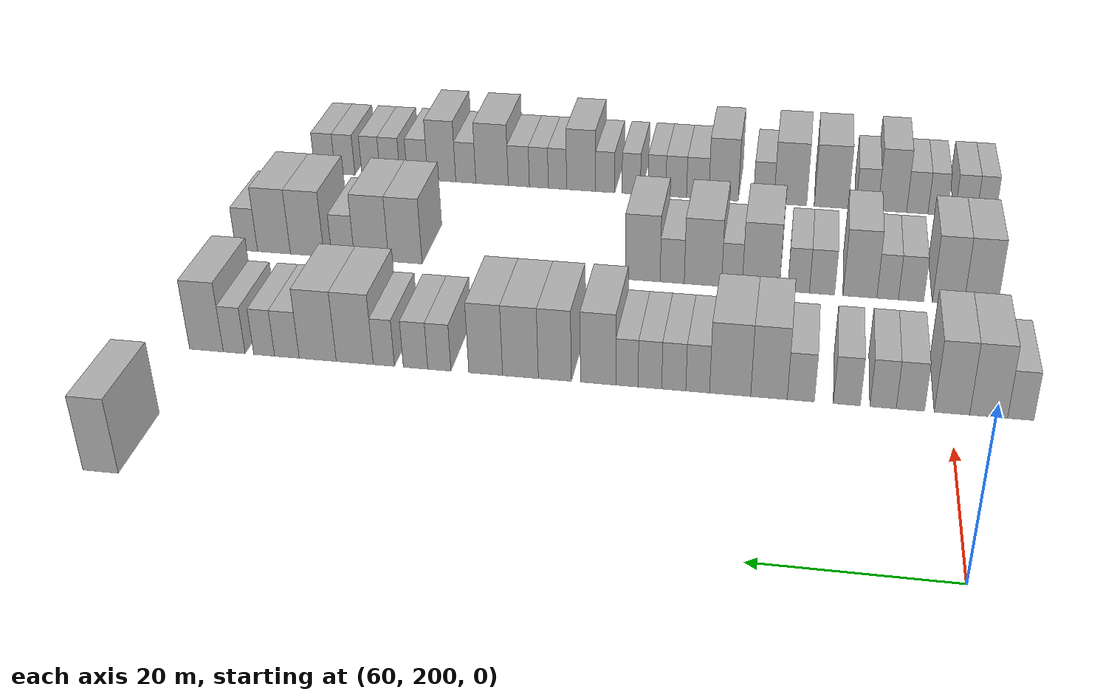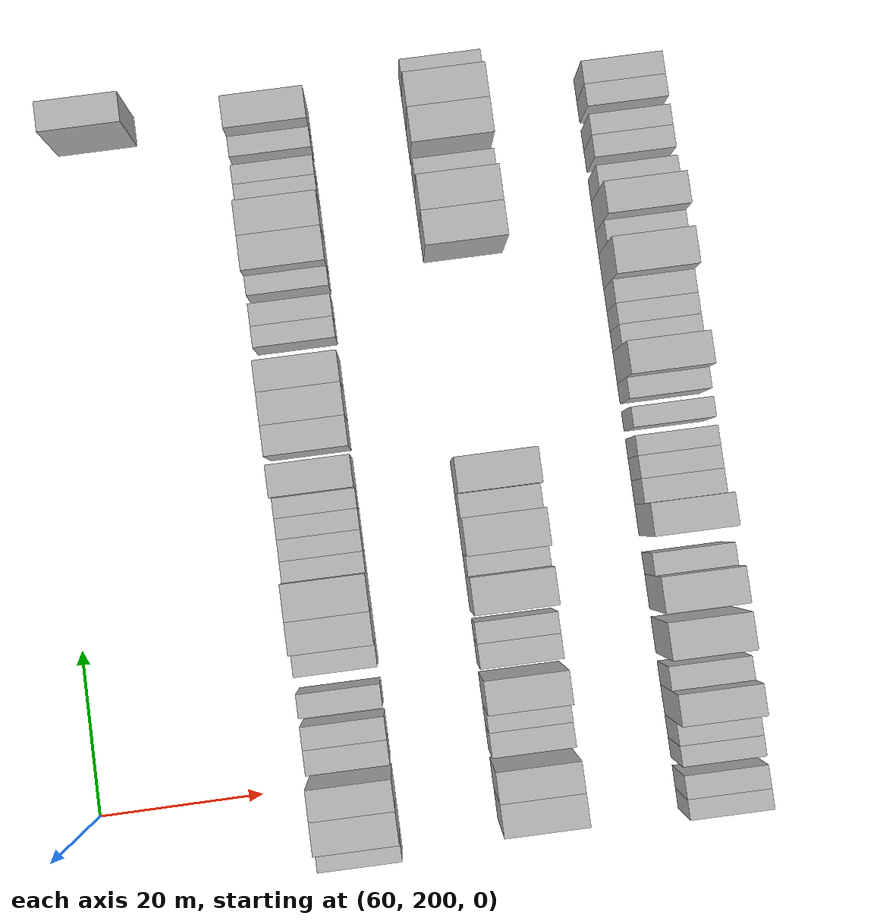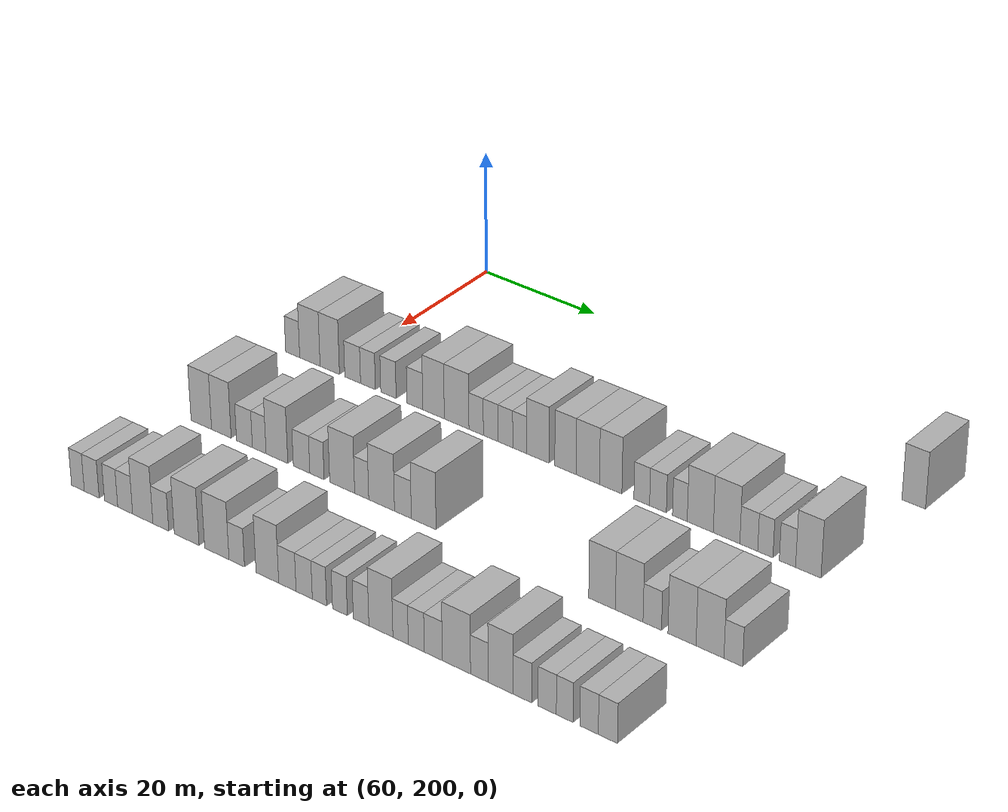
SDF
<sdf version="1.6">
 <world name="default">
  <model name="building_556">
   <static>1</static>
   <pose>69.0000 283.9982 0 0.000000 0.000000 0.000000</pose>
   <link name="link">
    <pose>0 0 4.50 0 0 0</pose>
    <collision name="collision"><geometry><box><size>10.0000 3.7069 9.0000</size></box></geometry></collision>
    <visual name="visual">
     <cast_shadows>0</cast_shadows>
     <geometry><box><size>10.0000 3.7069 9.0000</size></box></geometry>
     <material>
      <script>
       <uri>model://HANNAS_wall/materials/scripts</uri>
       <uri>model://HANNAS_wall/materials/textures</uri>
       <name>vrc/HANNAS_wall</name>
      </script>
     </material>
    </visual>
   </link>
  </model>
  <model name="building_719">
   <static>1</static>
   <pose>91.0000 192.8121 0 0.000000 0.000000 0.000000</pose>
   <link name="link">
    <pose>0 0 3.00 0 0 0</pose>
    <collision name="collision"><geometry><box><size>10.0000 2.6800 6.0000</size></box></geometry></collision>
    <visual name="visual">
     <cast_shadows>0</cast_shadows>
     <geometry><box><size>10.0000 2.6800 6.0000</size></box></geometry>
     <material>
      <script>
       <uri>model://HANNAS_wall/materials/scripts</uri>
       <uri>model://HANNAS_wall/materials/textures</uri>
       <name>vrc/HANNAS_wall</name>
      </script>
     </material>
    </visual>
   </link>
  </model>
  <model name="building_720">
   <static>1</static>
   <pose>91.0000 196.0876 0 0.000000 0.000000 0.000000</pose>
   <link name="link">
    <pose>0 0 4.50 0 0 0</pose>
    <collision name="collision"><geometry><box><size>10.0000 3.8709 9.0000</size></box></geometry></collision>
    <visual name="visual">
     <cast_shadows>0</cast_shadows>
     <geometry><box><size>10.0000 3.8709 9.0000</size></box></geometry>
     <material>
      <script>
       <uri>model://HANNAS_wall/materials/scripts</uri>
       <uri>model://HANNAS_wall/materials/textures</uri>
       <name>vrc/HANNAS_wall</name>
      </script>
     </material>
    </visual>
   </link>
  </model>
  <model name="building_721">
   <static>1</static>
   <pose>91.0000 199.8520 0 0.000000 0.000000 0.000000</pose>
   <link name="link">
    <pose>0 0 4.50 0 0 0</pose>
    <collision name="collision"><geometry><box><size>10.0000 3.6580 9.0000</size></box></geometry></collision>
    <visual name="visual">
     <cast_shadows>0</cast_shadows>
     <geometry><box><size>10.0000 3.6580 9.0000</size></box></geometry>
     <material>
      <script>
       <uri>model://HANNAS_wall/materials/scripts</uri>
       <uri>model://HANNAS_wall/materials/textures</uri>
       <name>vrc/HANNAS_wall</name>
      </script>
     </material>
    </visual>
   </link>
  </model>
  <model name="building_722">
   <static>1</static>
   <pose>91.0000 204.1499 0 0.000000 0.000000 0.000000</pose>
   <link name="link">
    <pose>0 0 3.00 0 0 0</pose>
    <collision name="collision"><geometry><box><size>10.0000 2.9379 6.0000</size></box></geometry></collision>
    <visual name="visual">
     <cast_shadows>0</cast_shadows>
     <geometry><box><size>10.0000 2.9379 6.0000</size></box></geometry>
     <material>
      <script>
       <uri>model://HANNAS_wall/materials/scripts</uri>
       <uri>model://HANNAS_wall/materials/textures</uri>
       <name>vrc/HANNAS_wall</name>
      </script>
     </material>
    </visual>
   </link>
  </model>
  <model name="building_723">
   <static>1</static>
   <pose>91.0000 206.9923 0 0.000000 0.000000 0.000000</pose>
   <link name="link">
    <pose>0 0 3.00 0 0 0</pose>
    <collision name="collision"><geometry><box><size>10.0000 2.7469 6.0000</size></box></geometry></collision>
    <visual name="visual">
     <cast_shadows>0</cast_shadows>
     <geometry><box><size>10.0000 2.7469 6.0000</size></box></geometry>
     <material>
      <script>
       <uri>model://HANNAS_wall/materials/scripts</uri>
       <uri>model://HANNAS_wall/materials/textures</uri>
       <name>vrc/HANNAS_wall</name>
      </script>
     </material>
    </visual>
   </link>
  </model>
  <model name="building_724">
   <static>1</static>
   <pose>91.0000 210.7777 0 0.000000 0.000000 0.000000</pose>
   <link name="link">
    <pose>0 0 3.00 0 0 0</pose>
    <collision name="collision"><geometry><box><size>10.0000 2.8239 6.0000</size></box></geometry></collision>
    <visual name="visual">
     <cast_shadows>0</cast_shadows>
     <geometry><box><size>10.0000 2.8239 6.0000</size></box></geometry>
     <material>
      <script>
       <uri>model://HANNAS_wall/materials/scripts</uri>
       <uri>model://HANNAS_wall/materials/textures</uri>
       <name>vrc/HANNAS_wall</name>
      </script>
     </material>
    </visual>
   </link>
  </model>
  <model name="building_725">
   <static>1</static>
   <pose>91.0000 215.6226 0 0.000000 0.000000 0.000000</pose>
   <link name="link">
    <pose>0 0 3.00 0 0 0</pose>
    <collision name="collision"><geometry><box><size>10.0000 2.8658 6.0000</size></box></geometry></collision>
    <visual name="visual">
     <cast_shadows>0</cast_shadows>
     <geometry><box><size>10.0000 2.8658 6.0000</size></box></geometry>
     <material>
      <script>
       <uri>model://HANNAS_wall/materials/scripts</uri>
       <uri>model://HANNAS_wall/materials/textures</uri>
       <name>vrc/HANNAS_wall</name>
      </script>
     </material>
    </visual>
   </link>
  </model>
  <model name="building_726">
   <static>1</static>
   <pose>91.0000 218.9947 0 0.000000 0.000000 0.000000</pose>
   <link name="link">
    <pose>0 0 4.50 0 0 0</pose>
    <collision name="collision"><geometry><box><size>10.0000 3.8783 9.0000</size></box></geometry></collision>
    <visual name="visual">
     <cast_shadows>0</cast_shadows>
     <geometry><box><size>10.0000 3.8783 9.0000</size></box></geometry>
     <material>
      <script>
       <uri>model://HANNAS_wall/materials/scripts</uri>
       <uri>model://HANNAS_wall/materials/textures</uri>
       <name>vrc/HANNAS_wall</name>
      </script>
     </material>
    </visual>
   </link>
  </model>
  <model name="building_727">
   <static>1</static>
   <pose>91.0000 223.1341 0 0.000000 0.000000 0.000000</pose>
   <link name="link">
    <pose>0 0 4.50 0 0 0</pose>
    <collision name="collision"><geometry><box><size>10.0000 4.4006 9.0000</size></box></geometry></collision>
    <visual name="visual">
     <cast_shadows>0</cast_shadows>
     <geometry><box><size>10.0000 4.4006 9.0000</size></box></geometry>
     <material>
      <script>
       <uri>model://HANNAS_wall/materials/scripts</uri>
       <uri>model://HANNAS_wall/materials/textures</uri>
       <name>vrc/HANNAS_wall</name>
      </script>
     </material>
    </visual>
   </link>
  </model>
  <model name="building_728">
   <static>1</static>
   <pose>91.0000 226.6099 0 0.000000 0.000000 0.000000</pose>
   <link name="link">
    <pose>0 0 3.00 0 0 0</pose>
    <collision name="collision"><geometry><box><size>10.0000 2.5509 6.0000</size></box></geometry></collision>
    <visual name="visual">
     <cast_shadows>0</cast_shadows>
     <geometry><box><size>10.0000 2.5509 6.0000</size></box></geometry>
     <material>
      <script>
       <uri>model://HANNAS_wall/materials/scripts</uri>
       <uri>model://HANNAS_wall/materials/textures</uri>
       <name>vrc/HANNAS_wall</name>
      </script>
     </material>
    </visual>
   </link>
  </model>
  <model name="building_729">
   <static>1</static>
   <pose>91.0000 229.1869 0 0.000000 0.000000 0.000000</pose>
   <link name="link">
    <pose>0 0 3.00 0 0 0</pose>
    <collision name="collision"><geometry><box><size>10.0000 2.6031 6.0000</size></box></geometry></collision>
    <visual name="visual">
     <cast_shadows>0</cast_shadows>
     <geometry><box><size>10.0000 2.6031 6.0000</size></box></geometry>
     <material>
      <script>
       <uri>model://HANNAS_wall/materials/scripts</uri>
       <uri>model://HANNAS_wall/materials/textures</uri>
       <name>vrc/HANNAS_wall</name>
      </script>
     </material>
    </visual>
   </link>
  </model>
  <model name="building_730">
   <static>1</static>
   <pose>91.0000 231.7648 0 0.000000 0.000000 0.000000</pose>
   <link name="link">
    <pose>0 0 3.00 0 0 0</pose>
    <collision name="collision"><geometry><box><size>10.0000 2.5526 6.0000</size></box></geometry></collision>
    <visual name="visual">
     <cast_shadows>0</cast_shadows>
     <geometry><box><size>10.0000 2.5526 6.0000</size></box></geometry>
     <material>
      <script>
       <uri>model://HANNAS_wall/materials/scripts</uri>
       <uri>model://HANNAS_wall/materials/textures</uri>
       <name>vrc/HANNAS_wall</name>
      </script>
     </material>
    </visual>
   </link>
  </model>
  <model name="building_731">
   <static>1</static>
   <pose>91.0000 234.2540 0 0.000000 0.000000 0.000000</pose>
   <link name="link">
    <pose>0 0 3.00 0 0 0</pose>
    <collision name="collision"><geometry><box><size>10.0000 2.4257 6.0000</size></box></geometry></collision>
    <visual name="visual">
     <cast_shadows>0</cast_shadows>
     <geometry><box><size>10.0000 2.4257 6.0000</size></box></geometry>
     <material>
      <script>
       <uri>model://HANNAS_wall/materials/scripts</uri>
       <uri>model://HANNAS_wall/materials/textures</uri>
       <name>vrc/HANNAS_wall</name>
      </script>
     </material>
    </visual>
   </link>
  </model>
  <model name="building_732">
   <static>1</static>
   <pose>91.0000 237.3948 0 0.000000 0.000000 0.000000</pose>
   <link name="link">
    <pose>0 0 4.50 0 0 0</pose>
    <collision name="collision"><geometry><box><size>10.0000 3.8560 9.0000</size></box></geometry></collision>
    <visual name="visual">
     <cast_shadows>0</cast_shadows>
     <geometry><box><size>10.0000 3.8560 9.0000</size></box></geometry>
     <material>
      <script>
       <uri>model://HANNAS_wall/materials/scripts</uri>
       <uri>model://HANNAS_wall/materials/textures</uri>
       <name>vrc/HANNAS_wall</name>
      </script>
     </material>
    </visual>
   </link>
  </model>
  <model name="building_733">
   <static>1</static>
   <pose>91.0000 242.1443 0 0.000000 0.000000 0.000000</pose>
   <link name="link">
    <pose>0 0 4.50 0 0 0</pose>
    <collision name="collision"><geometry><box><size>10.0000 3.6430 9.0000</size></box></geometry></collision>
    <visual name="visual">
     <cast_shadows>0</cast_shadows>
     <geometry><box><size>10.0000 3.6430 9.0000</size></box></geometry>
     <material>
      <script>
       <uri>model://HANNAS_wall/materials/scripts</uri>
       <uri>model://HANNAS_wall/materials/textures</uri>
       <name>vrc/HANNAS_wall</name>
      </script>
     </material>
    </visual>
   </link>
  </model>
  <model name="building_734">
   <static>1</static>
   <pose>91.0000 245.9452 0 0.000000 0.000000 0.000000</pose>
   <link name="link">
    <pose>0 0 4.50 0 0 0</pose>
    <collision name="collision"><geometry><box><size>10.0000 3.9589 9.0000</size></box></geometry></collision>
    <visual name="visual">
     <cast_shadows>0</cast_shadows>
     <geometry><box><size>10.0000 3.9589 9.0000</size></box></geometry>
     <material>
      <script>
       <uri>model://HANNAS_wall/materials/scripts</uri>
       <uri>model://HANNAS_wall/materials/textures</uri>
       <name>vrc/HANNAS_wall</name>
      </script>
     </material>
    </visual>
   </link>
  </model>
  <model name="building_735">
   <static>1</static>
   <pose>91.0000 249.8116 0 0.000000 0.000000 0.000000</pose>
   <link name="link">
    <pose>0 0 4.50 0 0 0</pose>
    <collision name="collision"><geometry><box><size>10.0000 3.7739 9.0000</size></box></geometry></collision>
    <visual name="visual">
     <cast_shadows>0</cast_shadows>
     <geometry><box><size>10.0000 3.7739 9.0000</size></box></geometry>
     <material>
      <script>
       <uri>model://HANNAS_wall/materials/scripts</uri>
       <uri>model://HANNAS_wall/materials/textures</uri>
       <name>vrc/HANNAS_wall</name>
      </script>
     </material>
    </visual>
   </link>
  </model>
  <model name="building_736">
   <static>1</static>
   <pose>91.0000 255.0027 0 0.000000 0.000000 0.000000</pose>
   <link name="link">
    <pose>0 0 3.00 0 0 0</pose>
    <collision name="collision"><geometry><box><size>10.0000 2.6083 6.0000</size></box></geometry></collision>
    <visual name="visual">
     <cast_shadows>0</cast_shadows>
     <geometry><box><size>10.0000 2.6083 6.0000</size></box></geometry>
     <material>
      <script>
       <uri>model://HANNAS_wall/materials/scripts</uri>
       <uri>model://HANNAS_wall/materials/textures</uri>
       <name>vrc/HANNAS_wall</name>
      </script>
     </material>
    </visual>
   </link>
  </model>
  <model name="building_737">
   <static>1</static>
   <pose>91.0000 257.6845 0 0.000000 0.000000 0.000000</pose>
   <link name="link">
    <pose>0 0 3.00 0 0 0</pose>
    <collision name="collision"><geometry><box><size>10.0000 2.7553 6.0000</size></box></geometry></collision>
    <visual name="visual">
     <cast_shadows>0</cast_shadows>
     <geometry><box><size>10.0000 2.7553 6.0000</size></box></geometry>
     <material>
      <script>
       <uri>model://HANNAS_wall/materials/scripts</uri>
       <uri>model://HANNAS_wall/materials/textures</uri>
       <name>vrc/HANNAS_wall</name>
      </script>
     </material>
    </visual>
   </link>
  </model>
  <model name="building_738">
   <static>1</static>
   <pose>91.0000 261.2666 0 0.000000 0.000000 0.000000</pose>
   <link name="link">
    <pose>0 0 3.00 0 0 0</pose>
    <collision name="collision"><geometry><box><size>10.0000 2.4089 6.0000</size></box></geometry></collision>
    <visual name="visual">
     <cast_shadows>0</cast_shadows>
     <geometry><box><size>10.0000 2.4089 6.0000</size></box></geometry>
     <material>
      <script>
       <uri>model://HANNAS_wall/materials/scripts</uri>
       <uri>model://HANNAS_wall/materials/textures</uri>
       <name>vrc/HANNAS_wall</name>
      </script>
     </material>
    </visual>
   </link>
  </model>
  <model name="building_739">
   <static>1</static>
   <pose>91.0000 264.5831 0 0.000000 0.000000 0.000000</pose>
   <link name="link">
    <pose>0 0 4.50 0 0 0</pose>
    <collision name="collision"><geometry><box><size>10.0000 4.2240 9.0000</size></box></geometry></collision>
    <visual name="visual">
     <cast_shadows>0</cast_shadows>
     <geometry><box><size>10.0000 4.2240 9.0000</size></box></geometry>
     <material>
      <script>
       <uri>model://HANNAS_wall/materials/scripts</uri>
       <uri>model://HANNAS_wall/materials/textures</uri>
       <name>vrc/HANNAS_wall</name>
      </script>
     </material>
    </visual>
   </link>
  </model>
  <model name="building_740">
   <static>1</static>
   <pose>91.0000 268.8235 0 0.000000 0.000000 0.000000</pose>
   <link name="link">
    <pose>0 0 4.50 0 0 0</pose>
    <collision name="collision"><geometry><box><size>10.0000 4.2568 9.0000</size></box></geometry></collision>
    <visual name="visual">
     <cast_shadows>0</cast_shadows>
     <geometry><box><size>10.0000 4.2568 9.0000</size></box></geometry>
     <material>
      <script>
       <uri>model://HANNAS_wall/materials/scripts</uri>
       <uri>model://HANNAS_wall/materials/textures</uri>
       <name>vrc/HANNAS_wall</name>
      </script>
     </material>
    </visual>
   </link>
  </model>
  <model name="building_741">
   <static>1</static>
   <pose>91.0000 272.3729 0 0.000000 0.000000 0.000000</pose>
   <link name="link">
    <pose>0 0 3.00 0 0 0</pose>
    <collision name="collision"><geometry><box><size>10.0000 2.8420 6.0000</size></box></geometry></collision>
    <visual name="visual">
     <cast_shadows>0</cast_shadows>
     <geometry><box><size>10.0000 2.8420 6.0000</size></box></geometry>
     <material>
      <script>
       <uri>model://HANNAS_wall/materials/scripts</uri>
       <uri>model://HANNAS_wall/materials/textures</uri>
       <name>vrc/HANNAS_wall</name>
      </script>
     </material>
    </visual>
   </link>
  </model>
  <model name="building_742">
   <static>1</static>
   <pose>91.0000 275.0004 0 0.000000 0.000000 0.000000</pose>
   <link name="link">
    <pose>0 0 3.00 0 0 0</pose>
    <collision name="collision"><geometry><box><size>10.0000 2.4131 6.0000</size></box></geometry></collision>
    <visual name="visual">
     <cast_shadows>0</cast_shadows>
     <geometry><box><size>10.0000 2.4131 6.0000</size></box></geometry>
     <material>
      <script>
       <uri>model://HANNAS_wall/materials/scripts</uri>
       <uri>model://HANNAS_wall/materials/textures</uri>
       <name>vrc/HANNAS_wall</name>
      </script>
     </material>
    </visual>
   </link>
  </model>
  <model name="building_743">
   <static>1</static>
   <pose>91.0000 278.4770 0 0.000000 0.000000 0.000000</pose>
   <link name="link">
    <pose>0 0 3.00 0 0 0</pose>
    <collision name="collision"><geometry><box><size>10.0000 2.5401 6.0000</size></box></geometry></collision>
    <visual name="visual">
     <cast_shadows>0</cast_shadows>
     <geometry><box><size>10.0000 2.5401 6.0000</size></box></geometry>
     <material>
      <script>
       <uri>model://HANNAS_wall/materials/scripts</uri>
       <uri>model://HANNAS_wall/materials/textures</uri>
       <name>vrc/HANNAS_wall</name>
      </script>
     </material>
    </visual>
   </link>
  </model>
  <model name="building_744">
   <static>1</static>
   <pose>91.0000 281.7236 0 0.000000 0.000000 0.000000</pose>
   <link name="link">
    <pose>0 0 4.50 0 0 0</pose>
    <collision name="collision"><geometry><box><size>10.0000 3.9530 9.0000</size></box></geometry></collision>
    <visual name="visual">
     <cast_shadows>0</cast_shadows>
     <geometry><box><size>10.0000 3.9530 9.0000</size></box></geometry>
     <material>
      <script>
       <uri>model://HANNAS_wall/materials/scripts</uri>
       <uri>model://HANNAS_wall/materials/textures</uri>
       <name>vrc/HANNAS_wall</name>
      </script>
     </material>
    </visual>
   </link>
  </model>
  <model name="building_918">
   <static>1</static>
   <pose>113.0000 195.2712 0 0.000000 0.000000 0.000000</pose>
   <link name="link">
    <pose>0 0 4.50 0 0 0</pose>
    <collision name="collision"><geometry><box><size>10.0000 3.8690 9.0000</size></box></geometry></collision>
    <visual name="visual">
     <cast_shadows>0</cast_shadows>
     <geometry><box><size>10.0000 3.8690 9.0000</size></box></geometry>
     <material>
      <script>
       <uri>model://HANNAS_wall/materials/scripts</uri>
       <uri>model://HANNAS_wall/materials/textures</uri>
       <name>vrc/HANNAS_wall</name>
      </script>
     </material>
    </visual>
   </link>
  </model>
  <model name="building_919">
   <static>1</static>
   <pose>113.0000 199.0331 0 0.000000 0.000000 0.000000</pose>
   <link name="link">
    <pose>0 0 4.50 0 0 0</pose>
    <collision name="collision"><geometry><box><size>10.0000 3.6548 9.0000</size></box></geometry></collision>
    <visual name="visual">
     <cast_shadows>0</cast_shadows>
     <geometry><box><size>10.0000 3.6548 9.0000</size></box></geometry>
     <material>
      <script>
       <uri>model://HANNAS_wall/materials/scripts</uri>
       <uri>model://HANNAS_wall/materials/textures</uri>
       <name>vrc/HANNAS_wall</name>
      </script>
     </material>
    </visual>
   </link>
  </model>
  <model name="building_920">
   <static>1</static>
   <pose>113.0000 203.3309 0 0.000000 0.000000 0.000000</pose>
   <link name="link">
    <pose>0 0 3.00 0 0 0</pose>
    <collision name="collision"><geometry><box><size>10.0000 2.9410 6.0000</size></box></geometry></collision>
    <visual name="visual">
     <cast_shadows>0</cast_shadows>
     <geometry><box><size>10.0000 2.9410 6.0000</size></box></geometry>
     <material>
      <script>
       <uri>model://HANNAS_wall/materials/scripts</uri>
       <uri>model://HANNAS_wall/materials/textures</uri>
       <name>vrc/HANNAS_wall</name>
      </script>
     </material>
    </visual>
   </link>
  </model>
  <model name="building_921">
   <static>1</static>
   <pose>113.0000 206.0599 0 0.000000 0.000000 0.000000</pose>
   <link name="link">
    <pose>0 0 3.00 0 0 0</pose>
    <collision name="collision"><geometry><box><size>10.0000 2.5170 6.0000</size></box></geometry></collision>
    <visual name="visual">
     <cast_shadows>0</cast_shadows>
     <geometry><box><size>10.0000 2.5170 6.0000</size></box></geometry>
     <material>
      <script>
       <uri>model://HANNAS_wall/materials/scripts</uri>
       <uri>model://HANNAS_wall/materials/textures</uri>
       <name>vrc/HANNAS_wall</name>
      </script>
     </material>
    </visual>
   </link>
  </model>
  <model name="building_922">
   <static>1</static>
   <pose>113.0000 209.3026 0 0.000000 0.000000 0.000000</pose>
   <link name="link">
    <pose>0 0 4.50 0 0 0</pose>
    <collision name="collision"><geometry><box><size>10.0000 3.9684 9.0000</size></box></geometry></collision>
    <visual name="visual">
     <cast_shadows>0</cast_shadows>
     <geometry><box><size>10.0000 3.9684 9.0000</size></box></geometry>
     <material>
      <script>
       <uri>model://HANNAS_wall/materials/scripts</uri>
       <uri>model://HANNAS_wall/materials/textures</uri>
       <name>vrc/HANNAS_wall</name>
      </script>
     </material>
    </visual>
   </link>
  </model>
  <model name="building_923">
   <static>1</static>
   <pose>113.0000 213.7774 0 0.000000 0.000000 0.000000</pose>
   <link name="link">
    <pose>0 0 3.00 0 0 0</pose>
    <collision name="collision"><geometry><box><size>10.0000 2.9812 6.0000</size></box></geometry></collision>
    <visual name="visual">
     <cast_shadows>0</cast_shadows>
     <geometry><box><size>10.0000 2.9812 6.0000</size></box></geometry>
     <material>
      <script>
       <uri>model://HANNAS_wall/materials/scripts</uri>
       <uri>model://HANNAS_wall/materials/textures</uri>
       <name>vrc/HANNAS_wall</name>
      </script>
     </material>
    </visual>
   </link>
  </model>
  <model name="building_924">
   <static>1</static>
   <pose>113.0000 216.5507 0 0.000000 0.000000 0.000000</pose>
   <link name="link">
    <pose>0 0 3.00 0 0 0</pose>
    <collision name="collision"><geometry><box><size>10.0000 2.5654 6.0000</size></box></geometry></collision>
    <visual name="visual">
     <cast_shadows>0</cast_shadows>
     <geometry><box><size>10.0000 2.5654 6.0000</size></box></geometry>
     <material>
      <script>
       <uri>model://HANNAS_wall/materials/scripts</uri>
       <uri>model://HANNAS_wall/materials/textures</uri>
       <name>vrc/HANNAS_wall</name>
      </script>
     </material>
    </visual>
   </link>
  </model>
  <model name="building_925">
   <static>1</static>
   <pose>113.0000 221.0475 0 0.000000 0.000000 0.000000</pose>
   <link name="link">
    <pose>0 0 4.50 0 0 0</pose>
    <collision name="collision"><geometry><box><size>10.0000 4.4280 9.0000</size></box></geometry></collision>
    <visual name="visual">
     <cast_shadows>0</cast_shadows>
     <geometry><box><size>10.0000 4.4280 9.0000</size></box></geometry>
     <material>
      <script>
       <uri>model://HANNAS_wall/materials/scripts</uri>
       <uri>model://HANNAS_wall/materials/textures</uri>
       <name>vrc/HANNAS_wall</name>
      </script>
     </material>
    </visual>
   </link>
  </model>
  <model name="building_926">
   <static>1</static>
   <pose>113.0000 224.4975 0 0.000000 0.000000 0.000000</pose>
   <link name="link">
    <pose>0 0 3.00 0 0 0</pose>
    <collision name="collision"><geometry><box><size>10.0000 2.4720 6.0000</size></box></geometry></collision>
    <visual name="visual">
     <cast_shadows>0</cast_shadows>
     <geometry><box><size>10.0000 2.4720 6.0000</size></box></geometry>
     <material>
      <script>
       <uri>model://HANNAS_wall/materials/scripts</uri>
       <uri>model://HANNAS_wall/materials/textures</uri>
       <name>vrc/HANNAS_wall</name>
      </script>
     </material>
    </visual>
   </link>
  </model>
  <model name="building_927">
   <static>1</static>
   <pose>113.0000 227.9823 0 0.000000 0.000000 0.000000</pose>
   <link name="link">
    <pose>0 0 4.50 0 0 0</pose>
    <collision name="collision"><geometry><box><size>10.0000 4.4975 9.0000</size></box></geometry></collision>
    <visual name="visual">
     <cast_shadows>0</cast_shadows>
     <geometry><box><size>10.0000 4.4975 9.0000</size></box></geometry>
     <material>
      <script>
       <uri>model://HANNAS_wall/materials/scripts</uri>
       <uri>model://HANNAS_wall/materials/textures</uri>
       <name>vrc/HANNAS_wall</name>
      </script>
     </material>
    </visual>
   </link>
  </model>
  <model name="building_928">
   <static>1</static>
   <pose>113.0000 231.6889 0 0.000000 0.000000 0.000000</pose>
   <link name="link">
    <pose>0 0 3.00 0 0 0</pose>
    <collision name="collision"><geometry><box><size>10.0000 2.9157 6.0000</size></box></geometry></collision>
    <visual name="visual">
     <cast_shadows>0</cast_shadows>
     <geometry><box><size>10.0000 2.9157 6.0000</size></box></geometry>
     <material>
      <script>
       <uri>model://HANNAS_wall/materials/scripts</uri>
       <uri>model://HANNAS_wall/materials/textures</uri>
       <name>vrc/HANNAS_wall</name>
      </script>
     </material>
    </visual>
   </link>
  </model>
  <model name="building_929">
   <static>1</static>
   <pose>113.0000 235.2698 0 0.000000 0.000000 0.000000</pose>
   <link name="link">
    <pose>0 0 4.50 0 0 0</pose>
    <collision name="collision"><geometry><box><size>10.0000 4.2461 9.0000</size></box></geometry></collision>
    <visual name="visual">
     <cast_shadows>0</cast_shadows>
     <geometry><box><size>10.0000 4.2461 9.0000</size></box></geometry>
     <material>
      <script>
       <uri>model://HANNAS_wall/materials/scripts</uri>
       <uri>model://HANNAS_wall/materials/textures</uri>
       <name>vrc/HANNAS_wall</name>
      </script>
     </material>
    </visual>
   </link>
  </model>
  <model name="building_930">
   <static>1</static>
   <pose>113.0000 264.7610 0 0.000000 0.000000 0.000000</pose>
   <link name="link">
    <pose>0 0 4.50 0 0 0</pose>
    <collision name="collision"><geometry><box><size>10.0000 4.2455 9.0000</size></box></geometry></collision>
    <visual name="visual">
     <cast_shadows>0</cast_shadows>
     <geometry><box><size>10.0000 4.2455 9.0000</size></box></geometry>
     <material>
      <script>
       <uri>model://HANNAS_wall/materials/scripts</uri>
       <uri>model://HANNAS_wall/materials/textures</uri>
       <name>vrc/HANNAS_wall</name>
      </script>
     </material>
    </visual>
   </link>
  </model>
  <model name="building_931">
   <static>1</static>
   <pose>113.0000 269.0708 0 0.000000 0.000000 0.000000</pose>
   <link name="link">
    <pose>0 0 4.50 0 0 0</pose>
    <collision name="collision"><geometry><box><size>10.0000 4.3741 9.0000</size></box></geometry></collision>
    <visual name="visual">
     <cast_shadows>0</cast_shadows>
     <geometry><box><size>10.0000 4.3741 9.0000</size></box></geometry>
     <material>
      <script>
       <uri>model://HANNAS_wall/materials/scripts</uri>
       <uri>model://HANNAS_wall/materials/textures</uri>
       <name>vrc/HANNAS_wall</name>
      </script>
     </material>
    </visual>
   </link>
  </model>
  <model name="building_932">
   <static>1</static>
   <pose>113.0000 272.7030 0 0.000000 0.000000 0.000000</pose>
   <link name="link">
    <pose>0 0 3.00 0 0 0</pose>
    <collision name="collision"><geometry><box><size>10.0000 2.8902 6.0000</size></box></geometry></collision>
    <visual name="visual">
     <cast_shadows>0</cast_shadows>
     <geometry><box><size>10.0000 2.8902 6.0000</size></box></geometry>
     <material>
      <script>
       <uri>model://HANNAS_wall/materials/scripts</uri>
       <uri>model://HANNAS_wall/materials/textures</uri>
       <name>vrc/HANNAS_wall</name>
      </script>
     </material>
    </visual>
   </link>
  </model>
  <model name="building_933">
   <static>1</static>
   <pose>113.0000 277.3177 0 0.000000 0.000000 0.000000</pose>
   <link name="link">
    <pose>0 0 4.50 0 0 0</pose>
    <collision name="collision"><geometry><box><size>10.0000 4.3393 9.0000</size></box></geometry></collision>
    <visual name="visual">
     <cast_shadows>0</cast_shadows>
     <geometry><box><size>10.0000 4.3393 9.0000</size></box></geometry>
     <material>
      <script>
       <uri>model://HANNAS_wall/materials/scripts</uri>
       <uri>model://HANNAS_wall/materials/textures</uri>
       <name>vrc/HANNAS_wall</name>
      </script>
     </material>
    </visual>
   </link>
  </model>
  <model name="building_934">
   <static>1</static>
   <pose>113.0000 281.6215 0 0.000000 0.000000 0.000000</pose>
   <link name="link">
    <pose>0 0 4.50 0 0 0</pose>
    <collision name="collision"><geometry><box><size>10.0000 4.2683 9.0000</size></box></geometry></collision>
    <visual name="visual">
     <cast_shadows>0</cast_shadows>
     <geometry><box><size>10.0000 4.2683 9.0000</size></box></geometry>
     <material>
      <script>
       <uri>model://HANNAS_wall/materials/scripts</uri>
       <uri>model://HANNAS_wall/materials/textures</uri>
       <name>vrc/HANNAS_wall</name>
      </script>
     </material>
    </visual>
   </link>
  </model>
  <model name="building_935">
   <static>1</static>
   <pose>113.0000 285.1701 0 0.000000 0.000000 0.000000</pose>
   <link name="link">
    <pose>0 0 3.00 0 0 0</pose>
    <collision name="collision"><geometry><box><size>10.0000 2.8287 6.0000</size></box></geometry></collision>
    <visual name="visual">
     <cast_shadows>0</cast_shadows>
     <geometry><box><size>10.0000 2.8287 6.0000</size></box></geometry>
     <material>
      <script>
       <uri>model://HANNAS_wall/materials/scripts</uri>
       <uri>model://HANNAS_wall/materials/textures</uri>
       <name>vrc/HANNAS_wall</name>
      </script>
     </material>
    </visual>
   </link>
  </model>
  <model name="building_1101">
   <static>1</static>
   <pose>135.0000 193.0036 0 0.000000 0.000000 0.000000</pose>
   <link name="link">
    <pose>0 0 3.00 0 0 0</pose>
    <collision name="collision"><geometry><box><size>10.0000 2.4047 6.0000</size></box></geometry></collision>
    <visual name="visual">
     <cast_shadows>0</cast_shadows>
     <geometry><box><size>10.0000 2.4047 6.0000</size></box></geometry>
     <material>
      <script>
       <uri>model://HANNAS_wall/materials/scripts</uri>
       <uri>model://HANNAS_wall/materials/textures</uri>
       <name>vrc/HANNAS_wall</name>
      </script>
     </material>
    </visual>
   </link>
  </model>
  <model name="building_1102">
   <static>1</static>
   <pose>135.0000 195.5897 0 0.000000 0.000000 0.000000</pose>
   <link name="link">
    <pose>0 0 3.00 0 0 0</pose>
    <collision name="collision"><geometry><box><size>10.0000 2.7674 6.0000</size></box></geometry></collision>
    <visual name="visual">
     <cast_shadows>0</cast_shadows>
     <geometry><box><size>10.0000 2.7674 6.0000</size></box></geometry>
     <material>
      <script>
       <uri>model://HANNAS_wall/materials/scripts</uri>
       <uri>model://HANNAS_wall/materials/textures</uri>
       <name>vrc/HANNAS_wall</name>
      </script>
     </material>
    </visual>
   </link>
  </model>
  <model name="building_1103">
   <static>1</static>
   <pose>135.0000 199.1931 0 0.000000 0.000000 0.000000</pose>
   <link name="link">
    <pose>0 0 3.00 0 0 0</pose>
    <collision name="collision"><geometry><box><size>10.0000 2.4393 6.0000</size></box></geometry></collision>
    <visual name="visual">
     <cast_shadows>0</cast_shadows>
     <geometry><box><size>10.0000 2.4393 6.0000</size></box></geometry>
     <material>
      <script>
       <uri>model://HANNAS_wall/materials/scripts</uri>
       <uri>model://HANNAS_wall/materials/textures</uri>
       <name>vrc/HANNAS_wall</name>
      </script>
     </material>
    </visual>
   </link>
  </model>
  <model name="building_1104">
   <static>1</static>
   <pose>135.0000 201.7877 0 0.000000 0.000000 0.000000</pose>
   <link name="link">
    <pose>0 0 3.00 0 0 0</pose>
    <collision name="collision"><geometry><box><size>10.0000 2.7499 6.0000</size></box></geometry></collision>
    <visual name="visual">
     <cast_shadows>0</cast_shadows>
     <geometry><box><size>10.0000 2.7499 6.0000</size></box></geometry>
     <material>
      <script>
       <uri>model://HANNAS_wall/materials/scripts</uri>
       <uri>model://HANNAS_wall/materials/textures</uri>
       <name>vrc/HANNAS_wall</name>
      </script>
     </material>
    </visual>
   </link>
  </model>
  <model name="building_1105">
   <static>1</static>
   <pose>135.0000 205.0149 0 0.000000 0.000000 0.000000</pose>
   <link name="link">
    <pose>0 0 4.50 0 0 0</pose>
    <collision name="collision"><geometry><box><size>10.0000 3.7046 9.0000</size></box></geometry></collision>
    <visual name="visual">
     <cast_shadows>0</cast_shadows>
     <geometry><box><size>10.0000 3.7046 9.0000</size></box></geometry>
     <material>
      <script>
       <uri>model://HANNAS_wall/materials/scripts</uri>
       <uri>model://HANNAS_wall/materials/textures</uri>
       <name>vrc/HANNAS_wall</name>
      </script>
     </material>
    </visual>
   </link>
  </model>
  <model name="building_1106">
   <static>1</static>
   <pose>135.0000 208.3036 0 0.000000 0.000000 0.000000</pose>
   <link name="link">
    <pose>0 0 3.00 0 0 0</pose>
    <collision name="collision"><geometry><box><size>10.0000 2.8730 6.0000</size></box></geometry></collision>
    <visual name="visual">
     <cast_shadows>0</cast_shadows>
     <geometry><box><size>10.0000 2.8730 6.0000</size></box></geometry>
     <material>
      <script>
       <uri>model://HANNAS_wall/materials/scripts</uri>
       <uri>model://HANNAS_wall/materials/textures</uri>
       <name>vrc/HANNAS_wall</name>
      </script>
     </material>
    </visual>
   </link>
  </model>
  <model name="building_1107">
   <static>1</static>
   <pose>135.0000 212.9566 0 0.000000 0.000000 0.000000</pose>
   <link name="link">
    <pose>0 0 4.50 0 0 0</pose>
    <collision name="collision"><geometry><box><size>10.0000 4.4329 9.0000</size></box></geometry></collision>
    <visual name="visual">
     <cast_shadows>0</cast_shadows>
     <geometry><box><size>10.0000 4.4329 9.0000</size></box></geometry>
     <material>
      <script>
       <uri>model://HANNAS_wall/materials/scripts</uri>
       <uri>model://HANNAS_wall/materials/textures</uri>
       <name>vrc/HANNAS_wall</name>
      </script>
     </material>
    </visual>
   </link>
  </model>
  <model name="building_1108">
   <static>1</static>
   <pose>135.0000 218.3236 0 0.000000 0.000000 0.000000</pose>
   <link name="link">
    <pose>0 0 4.50 0 0 0</pose>
    <collision name="collision"><geometry><box><size>10.0000 4.3012 9.0000</size></box></geometry></collision>
    <visual name="visual">
     <cast_shadows>0</cast_shadows>
     <geometry><box><size>10.0000 4.3012 9.0000</size></box></geometry>
     <material>
      <script>
       <uri>model://HANNAS_wall/materials/scripts</uri>
       <uri>model://HANNAS_wall/materials/textures</uri>
       <name>vrc/HANNAS_wall</name>
      </script>
     </material>
    </visual>
   </link>
  </model>
  <model name="building_1109">
   <static>1</static>
   <pose>135.0000 221.8352 0 0.000000 0.000000 0.000000</pose>
   <link name="link">
    <pose>0 0 3.00 0 0 0</pose>
    <collision name="collision"><geometry><box><size>10.0000 2.7221 6.0000</size></box></geometry></collision>
    <visual name="visual">
     <cast_shadows>0</cast_shadows>
     <geometry><box><size>10.0000 2.7221 6.0000</size></box></geometry>
     <material>
      <script>
       <uri>model://HANNAS_wall/materials/scripts</uri>
       <uri>model://HANNAS_wall/materials/textures</uri>
       <name>vrc/HANNAS_wall</name>
      </script>
     </material>
    </visual>
   </link>
  </model>
  <model name="building_1110">
   <static>1</static>
   <pose>135.0000 227.1612 0 0.000000 0.000000 0.000000</pose>
   <link name="link">
    <pose>0 0 4.50 0 0 0</pose>
    <collision name="collision"><geometry><box><size>10.0000 3.9298 9.0000</size></box></geometry></collision>
    <visual name="visual">
     <cast_shadows>0</cast_shadows>
     <geometry><box><size>10.0000 3.9298 9.0000</size></box></geometry>
     <material>
      <script>
       <uri>model://HANNAS_wall/materials/scripts</uri>
       <uri>model://HANNAS_wall/materials/textures</uri>
       <name>vrc/HANNAS_wall</name>
      </script>
     </material>
    </visual>
   </link>
  </model>
  <model name="building_1111">
   <static>1</static>
   <pose>135.0000 230.6136 0 0.000000 0.000000 0.000000</pose>
   <link name="link">
    <pose>0 0 3.00 0 0 0</pose>
    <collision name="collision"><geometry><box><size>10.0000 2.9750 6.0000</size></box></geometry></collision>
    <visual name="visual">
     <cast_shadows>0</cast_shadows>
     <geometry><box><size>10.0000 2.9750 6.0000</size></box></geometry>
     <material>
      <script>
       <uri>model://HANNAS_wall/materials/scripts</uri>
       <uri>model://HANNAS_wall/materials/textures</uri>
       <name>vrc/HANNAS_wall</name>
      </script>
     </material>
    </visual>
   </link>
  </model>
  <model name="building_1112">
   <static>1</static>
   <pose>135.0000 233.4871 0 0.000000 0.000000 0.000000</pose>
   <link name="link">
    <pose>0 0 3.00 0 0 0</pose>
    <collision name="collision"><geometry><box><size>10.0000 2.7721 6.0000</size></box></geometry></collision>
    <visual name="visual">
     <cast_shadows>0</cast_shadows>
     <geometry><box><size>10.0000 2.7721 6.0000</size></box></geometry>
     <material>
      <script>
       <uri>model://HANNAS_wall/materials/scripts</uri>
       <uri>model://HANNAS_wall/materials/textures</uri>
       <name>vrc/HANNAS_wall</name>
      </script>
     </material>
    </visual>
   </link>
  </model>
  <model name="building_1113">
   <static>1</static>
   <pose>135.0000 236.0809 0 0.000000 0.000000 0.000000</pose>
   <link name="link">
    <pose>0 0 3.00 0 0 0</pose>
    <collision name="collision"><geometry><box><size>10.0000 2.4155 6.0000</size></box></geometry></collision>
    <visual name="visual">
     <cast_shadows>0</cast_shadows>
     <geometry><box><size>10.0000 2.4155 6.0000</size></box></geometry>
     <material>
      <script>
       <uri>model://HANNAS_wall/materials/scripts</uri>
       <uri>model://HANNAS_wall/materials/textures</uri>
       <name>vrc/HANNAS_wall</name>
      </script>
     </material>
    </visual>
   </link>
  </model>
  <model name="building_1114">
   <static>1</static>
   <pose>135.0000 239.5276 0 0.000000 0.000000 0.000000</pose>
   <link name="link">
    <pose>0 0 3.00 0 0 0</pose>
    <collision name="collision"><geometry><box><size>10.0000 2.4779 6.0000</size></box></geometry></collision>
    <visual name="visual">
     <cast_shadows>0</cast_shadows>
     <geometry><box><size>10.0000 2.4779 6.0000</size></box></geometry>
     <material>
      <script>
       <uri>model://HANNAS_wall/materials/scripts</uri>
       <uri>model://HANNAS_wall/materials/textures</uri>
       <name>vrc/HANNAS_wall</name>
      </script>
     </material>
    </visual>
   </link>
  </model>
  <model name="building_1115">
   <static>1</static>
   <pose>135.0000 243.0585 0 0.000000 0.000000 0.000000</pose>
   <link name="link">
    <pose>0 0 3.00 0 0 0</pose>
    <collision name="collision"><geometry><box><size>10.0000 2.5839 6.0000</size></box></geometry></collision>
    <visual name="visual">
     <cast_shadows>0</cast_shadows>
     <geometry><box><size>10.0000 2.5839 6.0000</size></box></geometry>
     <material>
      <script>
       <uri>model://HANNAS_wall/materials/scripts</uri>
       <uri>model://HANNAS_wall/materials/textures</uri>
       <name>vrc/HANNAS_wall</name>
      </script>
     </material>
    </visual>
   </link>
  </model>
  <model name="building_1116">
   <static>1</static>
   <pose>135.0000 246.3338 0 0.000000 0.000000 0.000000</pose>
   <link name="link">
    <pose>0 0 4.50 0 0 0</pose>
    <collision name="collision"><geometry><box><size>10.0000 3.9667 9.0000</size></box></geometry></collision>
    <visual name="visual">
     <cast_shadows>0</cast_shadows>
     <geometry><box><size>10.0000 3.9667 9.0000</size></box></geometry>
     <material>
      <script>
       <uri>model://HANNAS_wall/materials/scripts</uri>
       <uri>model://HANNAS_wall/materials/textures</uri>
       <name>vrc/HANNAS_wall</name>
      </script>
     </material>
    </visual>
   </link>
  </model>
  <model name="building_1117">
   <static>1</static>
   <pose>135.0000 249.5733 0 0.000000 0.000000 0.000000</pose>
   <link name="link">
    <pose>0 0 3.00 0 0 0</pose>
    <collision name="collision"><geometry><box><size>10.0000 2.5122 6.0000</size></box></geometry></collision>
    <visual name="visual">
     <cast_shadows>0</cast_shadows>
     <geometry><box><size>10.0000 2.5122 6.0000</size></box></geometry>
     <material>
      <script>
       <uri>model://HANNAS_wall/materials/scripts</uri>
       <uri>model://HANNAS_wall/materials/textures</uri>
       <name>vrc/HANNAS_wall</name>
      </script>
     </material>
    </visual>
   </link>
  </model>
  <model name="building_1118">
   <static>1</static>
   <pose>135.0000 252.1322 0 0.000000 0.000000 0.000000</pose>
   <link name="link">
    <pose>0 0 3.00 0 0 0</pose>
    <collision name="collision"><geometry><box><size>10.0000 2.6057 6.0000</size></box></geometry></collision>
    <visual name="visual">
     <cast_shadows>0</cast_shadows>
     <geometry><box><size>10.0000 2.6057 6.0000</size></box></geometry>
     <material>
      <script>
       <uri>model://HANNAS_wall/materials/scripts</uri>
       <uri>model://HANNAS_wall/materials/textures</uri>
       <name>vrc/HANNAS_wall</name>
      </script>
     </material>
    </visual>
   </link>
  </model>
  <model name="building_1119">
   <static>1</static>
   <pose>135.0000 254.8909 0 0.000000 0.000000 0.000000</pose>
   <link name="link">
    <pose>0 0 3.00 0 0 0</pose>
    <collision name="collision"><geometry><box><size>10.0000 2.9116 6.0000</size></box></geometry></collision>
    <visual name="visual">
     <cast_shadows>0</cast_shadows>
     <geometry><box><size>10.0000 2.9116 6.0000</size></box></geometry>
     <material>
      <script>
       <uri>model://HANNAS_wall/materials/scripts</uri>
       <uri>model://HANNAS_wall/materials/textures</uri>
       <name>vrc/HANNAS_wall</name>
      </script>
     </material>
    </visual>
   </link>
  </model>
  <model name="building_1120">
   <static>1</static>
   <pose>135.0000 258.5958 0 0.000000 0.000000 0.000000</pose>
   <link name="link">
    <pose>0 0 4.50 0 0 0</pose>
    <collision name="collision"><geometry><box><size>10.0000 4.4982 9.0000</size></box></geometry></collision>
    <visual name="visual">
     <cast_shadows>0</cast_shadows>
     <geometry><box><size>10.0000 4.4982 9.0000</size></box></geometry>
     <material>
      <script>
       <uri>model://HANNAS_wall/materials/scripts</uri>
       <uri>model://HANNAS_wall/materials/textures</uri>
       <name>vrc/HANNAS_wall</name>
      </script>
     </material>
    </visual>
   </link>
  </model>
  <model name="building_1121">
   <static>1</static>
   <pose>135.0000 262.2362 0 0.000000 0.000000 0.000000</pose>
   <link name="link">
    <pose>0 0 3.00 0 0 0</pose>
    <collision name="collision"><geometry><box><size>10.0000 2.7827 6.0000</size></box></geometry></collision>
    <visual name="visual">
     <cast_shadows>0</cast_shadows>
     <geometry><box><size>10.0000 2.7827 6.0000</size></box></geometry>
     <material>
      <script>
       <uri>model://HANNAS_wall/materials/scripts</uri>
       <uri>model://HANNAS_wall/materials/textures</uri>
       <name>vrc/HANNAS_wall</name>
      </script>
     </material>
    </visual>
   </link>
  </model>
  <model name="building_1122">
   <static>1</static>
   <pose>135.0000 265.5838 0 0.000000 0.000000 0.000000</pose>
   <link name="link">
    <pose>0 0 4.50 0 0 0</pose>
    <collision name="collision"><geometry><box><size>10.0000 3.9125 9.0000</size></box></geometry></collision>
    <visual name="visual">
     <cast_shadows>0</cast_shadows>
     <geometry><box><size>10.0000 3.9125 9.0000</size></box></geometry>
     <material>
      <script>
       <uri>model://HANNAS_wall/materials/scripts</uri>
       <uri>model://HANNAS_wall/materials/textures</uri>
       <name>vrc/HANNAS_wall</name>
      </script>
     </material>
    </visual>
   </link>
  </model>
  <model name="building_1123">
   <static>1</static>
   <pose>135.0000 268.9871 0 0.000000 0.000000 0.000000</pose>
   <link name="link">
    <pose>0 0 3.00 0 0 0</pose>
    <collision name="collision"><geometry><box><size>10.0000 2.8942 6.0000</size></box></geometry></collision>
    <visual name="visual">
     <cast_shadows>0</cast_shadows>
     <geometry><box><size>10.0000 2.8942 6.0000</size></box></geometry>
     <material>
      <script>
       <uri>model://HANNAS_wall/materials/scripts</uri>
       <uri>model://HANNAS_wall/materials/textures</uri>
       <name>vrc/HANNAS_wall</name>
      </script>
     </material>
    </visual>
   </link>
  </model>
  <model name="building_1124">
   <static>1</static>
   <pose>135.0000 272.8321 0 0.000000 0.000000 0.000000</pose>
   <link name="link">
    <pose>0 0 3.00 0 0 0</pose>
    <collision name="collision"><geometry><box><size>10.0000 2.7958 6.0000</size></box></geometry></collision>
    <visual name="visual">
     <cast_shadows>0</cast_shadows>
     <geometry><box><size>10.0000 2.7958 6.0000</size></box></geometry>
     <material>
      <script>
       <uri>model://HANNAS_wall/materials/scripts</uri>
       <uri>model://HANNAS_wall/materials/textures</uri>
       <name>vrc/HANNAS_wall</name>
      </script>
     </material>
    </visual>
   </link>
  </model>
  <model name="building_1125">
   <static>1</static>
   <pose>135.0000 275.5231 0 0.000000 0.000000 0.000000</pose>
   <link name="link">
    <pose>0 0 3.00 0 0 0</pose>
    <collision name="collision"><geometry><box><size>10.0000 2.5862 6.0000</size></box></geometry></collision>
    <visual name="visual">
     <cast_shadows>0</cast_shadows>
     <geometry><box><size>10.0000 2.5862 6.0000</size></box></geometry>
     <material>
      <script>
       <uri>model://HANNAS_wall/materials/scripts</uri>
       <uri>model://HANNAS_wall/materials/textures</uri>
       <name>vrc/HANNAS_wall</name>
      </script>
     </material>
    </visual>
   </link>
  </model>
  <model name="building_1126">
   <static>1</static>
   <pose>135.0000 279.2168 0 0.000000 0.000000 0.000000</pose>
   <link name="link">
    <pose>0 0 3.00 0 0 0</pose>
    <collision name="collision"><geometry><box><size>10.0000 2.8012 6.0000</size></box></geometry></collision>
    <visual name="visual">
     <cast_shadows>0</cast_shadows>
     <geometry><box><size>10.0000 2.8012 6.0000</size></box></geometry>
     <material>
      <script>
       <uri>model://HANNAS_wall/materials/scripts</uri>
       <uri>model://HANNAS_wall/materials/textures</uri>
       <name>vrc/HANNAS_wall</name>
      </script>
     </material>
    </visual>
   </link>
  </model>
  <model name="building_1127">
   <static>1</static>
   <pose>135.0000 282.0563 0 0.000000 0.000000 0.000000</pose>
   <link name="link">
    <pose>0 0 3.00 0 0 0</pose>
    <collision name="collision"><geometry><box><size>10.0000 2.8778 6.0000</size></box></geometry></collision>
    <visual name="visual">
     <cast_shadows>0</cast_shadows>
     <geometry><box><size>10.0000 2.8778 6.0000</size></box></geometry>
     <material>
      <script>
       <uri>model://HANNAS_wall/materials/scripts</uri>
       <uri>model://HANNAS_wall/materials/textures</uri>
       <name>vrc/HANNAS_wall</name>
      </script>
     </material>
    </visual>
   </link>
  </model>
 </world>
</sdf>
